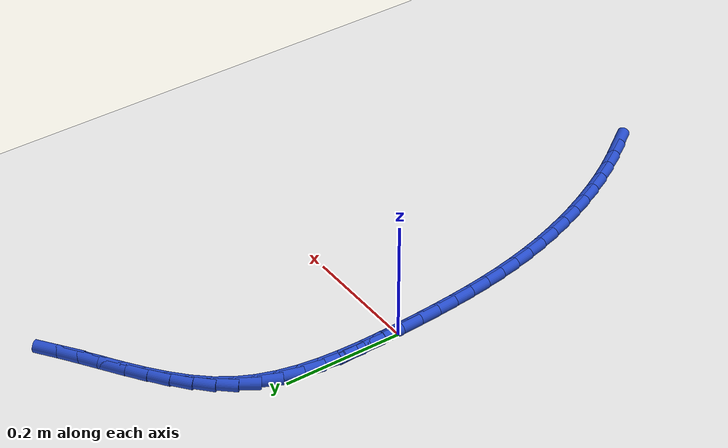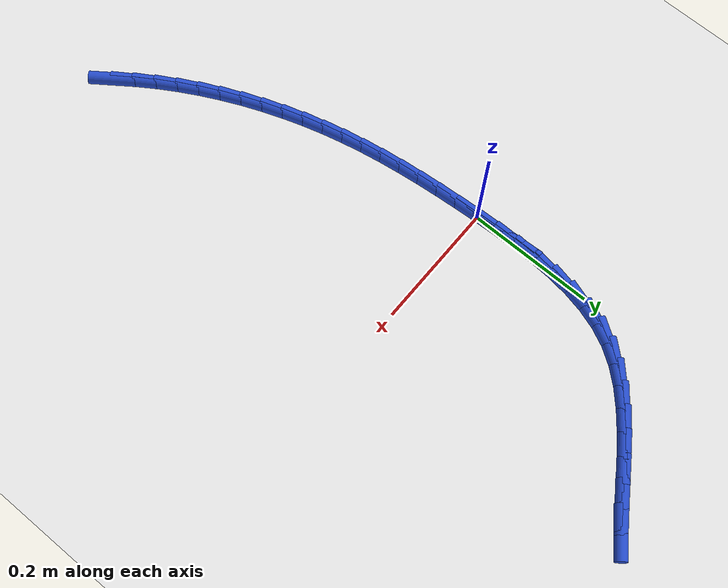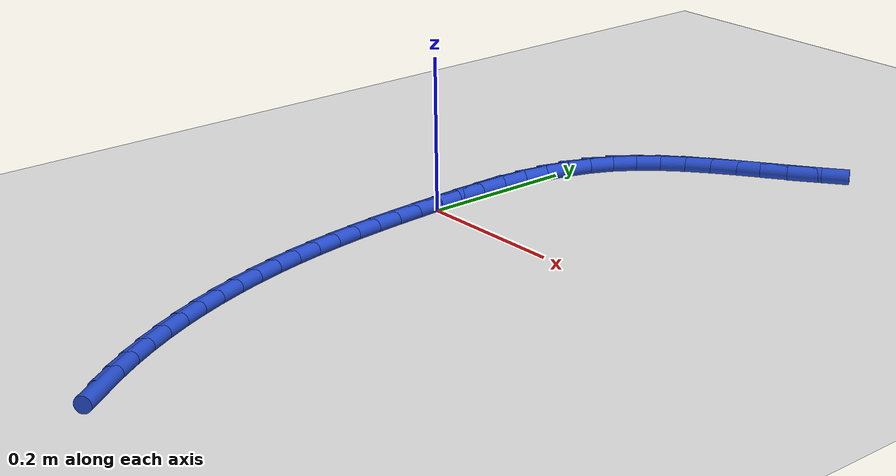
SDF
<sdf version="1.6">
 <world name="default">
  <model name="ground_plane">
   <static>1</static>
   <link name="link">
    <collision name="collision">
     <geometry><plane><normal>0 0 1</normal><size>100 100</size></plane></geometry>
     <surface><friction><ode><mu>100</mu><mu2>50</mu2></ode></friction></surface>
    </collision>
    <visual name="visual">
     <cast_shadows>0</cast_shadows>
     <geometry><plane><normal>0 0 1</normal><size>100 100</size></plane></geometry>
     <material>
      <script><uri>file://media/materials/scripts/gazebo.material</uri><name>Gazebo/WhiteGlow</name></script>
     </material>
    </visual>
   </link>
  </model>
  <model name="line">
   <link name="link_0">
    <pose>-1.8865117801247777e-17 -6.938893903907228e-18 0.01 0 1.57 -1.5235107660359657</pose>
    <collision name="collision">
     <geometry><cylinder><radius>0.01</radius><length>0.08</length></cylinder></geometry>
    </collision>
    <visual name="visual">
     <material>
      <script><name>Gazebo/Blue</name><uri>file://media/materials/scripts/gazebo.material</uri></script>
     </material>
     <geometry><cylinder><radius>0.01</radius><length>0.08</length></cylinder></geometry>
    </visual>
   </link>
   <link name="link_1">
    <pose>-0.0016768079151093715 0.03543487617344846 0.01 0 1.57 -1.5468639049425708</pose>
    <collision name="collision">
     <geometry><cylinder><radius>0.01</radius><length>0.08</length></cylinder></geometry>
    </collision>
    <visual name="visual">
     <material>
      <script><name>Gazebo/Blue</name><uri>file://media/materials/scripts/gazebo.material</uri></script>
     </material>
     <geometry><cylinder><radius>0.01</radius><length>0.08</length></cylinder></geometry>
    </visual>
   </link>
   <link name="link_2">
    <pose>-0.002530282724119755 0.07108993283302313 0.01 0 1.57 1.5583452302952334</pose>
    <collision name="collision">
     <geometry><cylinder><radius>0.01</radius><length>0.08</length></cylinder></geometry>
    </collision>
    <visual name="visual">
     <material>
      <script><name>Gazebo/Blue</name><uri>file://media/materials/scripts/gazebo.material</uri></script>
     </material>
     <geometry><cylinder><radius>0.01</radius><length>0.08</length></cylinder></geometry>
    </visual>
   </link>
   <link name="link_3">
    <pose>-0.002088371365965157 0.10657986108580306 0.01 0 1.57 1.5076467822202162</pose>
    <collision name="collision">
     <geometry><cylinder><radius>0.01</radius><length>0.08</length></cylinder></geometry>
    </collision>
    <visual name="visual">
     <material>
      <script><name>Gazebo/Blue</name><uri>file://media/materials/scripts/gazebo.material</uri></script>
     </material>
     <geometry><cylinder><radius>0.01</radius><length>0.08</length></cylinder></geometry>
    </visual>
   </link>
   <link name="link_4">
    <pose>0.0001209792204204408 0.1415193520388671 0.01 0 1.57 1.4407013593807974</pose>
    <collision name="collision">
     <geometry><cylinder><radius>0.01</radius><length>0.08</length></cylinder></geometry>
    </collision>
    <visual name="visual">
     <material>
      <script><name>Gazebo/Blue</name><uri>file://media/materials/scripts/gazebo.material</uri></script>
     </material>
     <geometry><cylinder><radius>0.01</radius><length>0.08</length></cylinder></geometry>
    </visual>
   </link>
   <link name="link_5">
    <pose>0.004569822096103057 0.1755230967992941 0.01 0 1.57 1.3551159942801971</pose>
    <collision name="collision">
     <geometry><cylinder><radius>0.01</radius><length>0.08</length></cylinder></geometry>
    </collision>
    <visual name="visual">
     <material>
      <script><name>Gazebo/Blue</name><uri>file://media/materials/scripts/gazebo.material</uri></script>
     </material>
     <geometry><cylinder><radius>0.01</radius><length>0.08</length></cylinder></geometry>
    </visual>
   </link>
   <link name="link_6">
    <pose>0.01173021032214871 0.2082057864741631 0.01 0 1.57 1.24850706208488</pose>
    <collision name="collision">
     <geometry><cylinder><radius>0.01</radius><length>0.08</length></cylinder></geometry>
    </collision>
    <visual name="visual">
     <material>
      <script><name>Gazebo/Blue</name><uri>file://media/materials/scripts/gazebo.material</uri></script>
     </material>
     <geometry><cylinder><radius>0.01</radius><length>0.08</length></cylinder></geometry>
    </visual>
   </link>
   <link name="link_7">
    <pose>0.022074196959623413 0.23918211217055307 0.01 0 1.57 1.119484578515157</pose>
    <collision name="collision">
     <geometry><cylinder><radius>0.01</radius><length>0.08</length></cylinder></geometry>
    </collision>
    <visual name="visual">
     <material>
      <script><name>Gazebo/Blue</name><uri>file://media/materials/scripts/gazebo.material</uri></script>
     </material>
     <geometry><cylinder><radius>0.01</radius><length>0.08</length></cylinder></geometry>
    </visual>
   </link>
   <link name="link_8">
    <pose>0.03607383506959317 0.2680667649955427 0.01 0 1.57 0.9750801985812856</pose>
    <collision name="collision">
     <geometry><cylinder><radius>0.01</radius><length>0.08</length></cylinder></geometry>
    </collision>
    <visual name="visual">
     <material>
      <script><name>Gazebo/Blue</name><uri>file://media/materials/scripts/gazebo.material</uri></script>
     </material>
     <geometry><cylinder><radius>0.01</radius><length>0.08</length></cylinder></geometry>
    </visual>
   </link>
   <link name="link_9">
    <pose>0.054047725164523844 0.2945821585456801 0.01 0 1.57 0.8476703503692483</pose>
    <collision name="collision">
     <geometry><cylinder><radius>0.01</radius><length>0.08</length></cylinder></geometry>
    </collision>
    <visual name="visual">
     <material>
      <script><name>Gazebo/Blue</name><uri>file://media/materials/scripts/gazebo.material</uri></script>
     </material>
     <geometry><cylinder><radius>0.01</radius><length>0.08</length></cylinder></geometry>
    </visual>
   </link>
   <link name="link_10">
    <pose>0.07557351755015448 0.3189708476700976 0.01 0 1.57 0.7478165467816401</pose>
    <collision name="collision">
     <geometry><cylinder><radius>0.01</radius><length>0.08</length></cylinder></geometry>
    </collision>
    <visual name="visual">
     <material>
      <script><name>Gazebo/Blue</name><uri>file://media/materials/scripts/gazebo.material</uri></script>
     </material>
     <geometry><cylinder><radius>0.01</radius><length>0.08</length></cylinder></geometry>
    </visual>
   </link>
   <link name="link_11">
    <pose>0.10000551932537141 0.34163217240310434 0.01 0 1.57 0.674269142136977</pose>
    <collision name="collision">
     <geometry><cylinder><radius>0.01</radius><length>0.08</length></cylinder></geometry>
    </collision>
    <visual name="visual">
     <material>
      <script><name>Gazebo/Blue</name><uri>file://media/materials/scripts/gazebo.material</uri></script>
     </material>
     <geometry><cylinder><radius>0.01</radius><length>0.08</length></cylinder></geometry>
    </visual>
   </link>
   <link name="link_12">
    <pose>0.12669799187099895 0.36296550487273166 0.01 0 1.57 0.6245701626853636</pose>
    <collision name="collision">
     <geometry><cylinder><radius>0.01</radius><length>0.08</length></cylinder></geometry>
    </collision>
    <visual name="visual">
     <material>
      <script><name>Gazebo/Blue</name><uri>file://media/materials/scripts/gazebo.material</uri></script>
     </material>
     <geometry><cylinder><radius>0.01</radius><length>0.08</length></cylinder></geometry>
    </visual>
   </link>
   <link name="link_13">
    <pose>0.15500519656786144 0.38337021720701103 0.01 0 1.57 0.5964206562703848</pose>
    <collision name="collision">
     <geometry><cylinder><radius>0.01</radius><length>0.08</length></cylinder></geometry>
    </collision>
    <visual name="visual">
     <material>
      <script><name>Gazebo/Blue</name><uri>file://media/materials/scripts/gazebo.material</uri></script>
     </material>
     <geometry><cylinder><radius>0.01</radius><length>0.08</length></cylinder></geometry>
    </visual>
   </link>
   <link name="link_14">
    <pose>0.18428139479678346 0.4032456815339739 0.01 0 1.57 0.5882977099093772</pose>
    <collision name="collision">
     <geometry><cylinder><radius>0.01</radius><length>0.08</length></cylinder></geometry>
    </collision>
    <visual name="visual">
     <material>
      <script><name>Gazebo/Blue</name><uri>file://media/materials/scripts/gazebo.material</uri></script>
     </material>
     <geometry><cylinder><radius>0.01</radius><length>0.08</length></cylinder></geometry>
    </visual>
   </link>
   <link name="link_15">
    <pose>0.21388084793858925 0.4229912699816514 0.01 0 1.57 0.5996656336511133</pose>
    <collision name="collision">
     <geometry><cylinder><radius>0.01</radius><length>0.08</length></cylinder></geometry>
    </collision>
    <visual name="visual">
     <material>
      <script><name>Gazebo/Blue</name><uri>file://media/materials/scripts/gazebo.material</uri></script>
     </material>
     <geometry><cylinder><radius>0.01</radius><length>0.08</length></cylinder></geometry>
    </visual>
   </link>
   <link name="link_16">
    <pose>0.24315781737410327 0.44300635467807487 0.01 0 1.57 0.6310055048117249</pose>
    <collision name="collision">
     <geometry><cylinder><radius>0.01</radius><length>0.08</length></cylinder></geometry>
    </collision>
    <visual name="visual">
     <material>
      <script><name>Gazebo/Blue</name><uri>file://media/materials/scripts/gazebo.material</uri></script>
     </material>
     <geometry><cylinder><radius>0.01</radius><length>0.08</length></cylinder></geometry>
    </visual>
   </link>
   <link name="link_212">
    <pose>0.18154284457573475 -0.5712118179858698 0.01 0 1.57 -0.9440578989242376</pose>
    <collision name="collision">
     <geometry><cylinder><radius>0.01</radius><length>0.08</length></cylinder></geometry>
    </collision>
    <visual name="visual">
     <material>
      <script><name>Gazebo/Blue</name><uri>file://media/materials/scripts/gazebo.material</uri></script>
     </material>
     <geometry><cylinder><radius>0.01</radius><length>0.08</length></cylinder></geometry>
    </visual>
   </link>
   <link name="link_213">
    <pose>0.16188680686247278 -0.5440675102943555 0.01 0 1.57 -0.9859035523308772</pose>
    <collision name="collision">
     <geometry><cylinder><radius>0.01</radius><length>0.08</length></cylinder></geometry>
    </collision>
    <visual name="visual">
     <material>
      <script><name>Gazebo/Blue</name><uri>file://media/materials/scripts/gazebo.material</uri></script>
     </material>
     <geometry><cylinder><radius>0.01</radius><length>0.08</length></cylinder></geometry>
    </visual>
   </link>
   <link name="link_214">
    <pose>0.1433155122270732 -0.5160219890145514 0.01 0 1.57 -1.0279519584568029</pose>
    <collision name="collision">
     <geometry><cylinder><radius>0.01</radius><length>0.08</length></cylinder></geometry>
    </collision>
    <visual name="visual">
     <material>
      <script><name>Gazebo/Blue</name><uri>file://media/materials/scripts/gazebo.material</uri></script>
     </material>
     <geometry><cylinder><radius>0.01</radius><length>0.08</length></cylinder></geometry>
    </visual>
   </link>
   <link name="link_215">
    <pose>0.12585443611218444 -0.48707950611218764 0.01 0 1.57 -1.068817954261151</pose>
    <collision name="collision">
     <geometry><cylinder><radius>0.01</radius><length>0.08</length></cylinder></geometry>
    </collision>
    <visual name="visual">
     <material>
      <script><name>Gazebo/Blue</name><uri>file://media/materials/scripts/gazebo.material</uri></script>
     </material>
     <geometry><cylinder><radius>0.01</radius><length>0.08</length></cylinder></geometry>
    </visual>
   </link>
   <link name="link_216">
    <pose>0.10952583622856074 -0.4573302423348391 0.01 0 1.57 -1.1084937503842822</pose>
    <collision name="collision">
     <geometry><cylinder><radius>0.01</radius><length>0.08</length></cylinder></geometry>
    </collision>
    <visual name="visual">
     <material>
      <script><name>Gazebo/Blue</name><uri>file://media/materials/scripts/gazebo.material</uri></script>
     </material>
     <geometry><cylinder><radius>0.01</radius><length>0.08</length></cylinder></geometry>
    </visual>
   </link>
   <link name="link_217">
    <pose>0.09435141963721703 -0.4268790834032487 0.01 0 1.57 -1.147223464577513</pose>
    <collision name="collision">
     <geometry><cylinder><radius>0.01</radius><length>0.08</length></cylinder></geometry>
    </collision>
    <visual name="visual">
     <material>
      <script><name>Gazebo/Blue</name><uri>file://media/materials/scripts/gazebo.material</uri></script>
     </material>
     <geometry><cylinder><radius>0.01</radius><length>0.08</length></cylinder></geometry>
    </visual>
   </link>
   <link name="link_218">
    <pose>0.08035289339916878 -0.39583091503815987 0.01 0 1.57 -1.185248839978481</pose>
    <collision name="collision">
     <geometry><cylinder><radius>0.01</radius><length>0.08</length></cylinder></geometry>
    </collision>
    <visual name="visual">
     <material>
      <script><name>Gazebo/Blue</name><uri>file://media/materials/scripts/gazebo.material</uri></script>
     </material>
     <geometry><cylinder><radius>0.01</radius><length>0.08</length></cylinder></geometry>
    </visual>
   </link>
   <link name="link_219">
    <pose>0.06755196457543117 -0.3642906229603154 0.01 0 1.57 -1.222810805842237</pose>
    <collision name="collision">
     <geometry><cylinder><radius>0.01</radius><length>0.08</length></cylinder></geometry>
    </collision>
    <visual name="visual">
     <material>
      <script><name>Gazebo/Blue</name><uri>file://media/materials/scripts/gazebo.material</uri></script>
     </material>
     <geometry><cylinder><radius>0.01</radius><length>0.08</length></cylinder></geometry>
    </visual>
   </link>
   <link name="link_220">
    <pose>0.05597034022702031 -0.33236309289046034 0.01 0 1.57 -1.2601516167888744</pose>
    <collision name="collision">
     <geometry><cylinder><radius>0.01</radius><length>0.08</length></cylinder></geometry>
    </collision>
    <visual name="visual">
     <material>
      <script><name>Gazebo/Blue</name><uri>file://media/materials/scripts/gazebo.material</uri></script>
     </material>
     <geometry><cylinder><radius>0.01</radius><length>0.08</length></cylinder></geometry>
    </visual>
   </link>
   <link name="link_221">
    <pose>0.04562972741495132 -0.30015321054933736 0.01 0 1.57 -1.297517357014985</pose>
    <collision name="collision">
     <geometry><cylinder><radius>0.01</radius><length>0.08</length></cylinder></geometry>
    </collision>
    <visual name="visual">
     <material>
      <script><name>Gazebo/Blue</name><uri>file://media/materials/scripts/gazebo.material</uri></script>
     </material>
     <geometry><cylinder><radius>0.01</radius><length>0.08</length></cylinder></geometry>
    </visual>
   </link>
   <link name="link_222">
    <pose>0.03655182758560636 -0.26776585469777836 0.01 0 1.57 -1.334600627193738</pose>
    <collision name="collision">
     <geometry><cylinder><radius>0.01</radius><length>0.08</length></cylinder></geometry>
    </collision>
    <visual name="visual">
     <material>
      <script><name>Gazebo/Blue</name><uri>file://media/materials/scripts/gazebo.material</uri></script>
     </material>
     <geometry><cylinder><radius>0.01</radius><length>0.08</length></cylinder></geometry>
    </visual>
   </link>
   <link name="link_223">
    <pose>0.028730913415292023 -0.23527190333300244 0.01 0 1.57 -1.3695108703884593</pose>
    <collision name="collision">
     <geometry><cylinder><radius>0.01</radius><length>0.08</length></cylinder></geometry>
    </collision>
    <visual name="visual">
     <material>
      <script><name>Gazebo/Blue</name><uri>file://media/materials/scripts/gazebo.material</uri></script>
     </material>
     <geometry><cylinder><radius>0.01</radius><length>0.08</length></cylinder></geometry>
    </visual>
   </link>
   <link name="link_224">
    <pose>0.022070261515810055 -0.2026294355308674 0.01 0 1.57 -1.401507252321776</pose>
    <collision name="collision">
     <geometry><cylinder><radius>0.01</radius><length>0.08</length></cylinder></geometry>
    </collision>
    <visual name="visual">
     <material>
      <script><name>Gazebo/Blue</name><uri>file://media/materials/scripts/gazebo.material</uri></script>
     </material>
     <geometry><cylinder><radius>0.01</radius><length>0.08</length></cylinder></geometry>
    </visual>
   </link>
   <link name="link_225">
    <pose>0.016454302997760368 -0.16977316944256005 0.01 0 1.57 -1.430283297628939</pose>
    <collision name="collision">
     <geometry><cylinder><radius>0.01</radius><length>0.08</length></cylinder></geometry>
    </collision>
    <visual name="visual">
     <material>
      <script><name>Gazebo/Blue</name><uri>file://media/materials/scripts/gazebo.material</uri></script>
     </material>
     <geometry><cylinder><radius>0.01</radius><length>0.08</length></cylinder></geometry>
    </visual>
   </link>
   <link name="link_226">
    <pose>0.011767468971743068 -0.13663782321926782 0.01 0 1.57 -1.4556180359487596</pose>
    <collision name="collision">
     <geometry><cylinder><radius>0.01</radius><length>0.08</length></cylinder></geometry>
    </collision>
    <visual name="visual">
     <material>
      <script><name>Gazebo/Blue</name><uri>file://media/materials/scripts/gazebo.material</uri></script>
     </material>
     <geometry><cylinder><radius>0.01</radius><length>0.08</length></cylinder></geometry>
    </visual>
   </link>
   <link name="link_227">
    <pose>0.007894190548358273 -0.1031581150121783 0.01 0 1.57 -1.4773732222284321</pose>
    <collision name="collision">
     <geometry><cylinder><radius>0.01</radius><length>0.08</length></cylinder></geometry>
    </collision>
    <visual name="visual">
     <material>
      <script><name>Gazebo/Blue</name><uri>file://media/materials/scripts/gazebo.material</uri></script>
     </material>
     <geometry><cylinder><radius>0.01</radius><length>0.08</length></cylinder></geometry>
    </visual>
   </link>
   <link name="link_228">
    <pose>0.004718898838206015 -0.06926876297247807 0.01 0 1.57 -1.4954864321577388</pose>
    <collision name="collision">
     <geometry><cylinder><radius>0.01</radius><length>0.08</length></cylinder></geometry>
    </collision>
    <visual name="visual">
     <material>
      <script><name>Gazebo/Blue</name><uri>file://media/materials/scripts/gazebo.material</uri></script>
     </material>
     <geometry><cylinder><radius>0.01</radius><length>0.08</length></cylinder></geometry>
    </visual>
   </link>
   <link name="link_229">
    <pose>0.002126024951886574 -0.034904485251356365 0.01 0 1.57 -1.5099616922911039</pose>
    <collision name="collision">
     <geometry><cylinder><radius>0.01</radius><length>0.08</length></cylinder></geometry>
    </collision>
    <visual name="visual">
     <material>
      <script><name>Gazebo/Blue</name><uri>file://media/materials/scripts/gazebo.material</uri></script>
     </material>
     <geometry><cylinder><radius>0.01</radius><length>0.08</length></cylinder></geometry>
    </visual>
   </link>
   <link name="link_230">
    <pose>-3.209238430557093e-17 1.734723475976807e-16 0.01 0 1.57 -1.520859106689337</pose>
    <collision name="collision">
     <geometry><cylinder><radius>0.01</radius><length>0.08</length></cylinder></geometry>
    </collision>
    <visual name="visual">
     <material>
      <script><name>Gazebo/Blue</name><uri>file://media/materials/scripts/gazebo.material</uri></script>
     </material>
     <geometry><cylinder><radius>0.01</radius><length>0.08</length></cylinder></geometry>
    </visual>
   </link>
   <link name="link_231">
    <pose>-0.0017747449068536926 0.03550997463040405 0.01 0 1.57 -1.5282845856909857</pose>
    <collision name="collision">
     <geometry><cylinder><radius>0.01</radius><length>0.08</length></cylinder></geometry>
    </collision>
    <visual name="visual">
     <material>
      <script><name>Gazebo/Blue</name><uri>file://media/materials/scripts/gazebo.material</uri></script>
     </material>
     <geometry><cylinder><radius>0.01</radius><length>0.08</length></cylinder></geometry>
    </visual>
   </link>
   <link name="link_232">
    <pose>-0.003313778658074292 0.07169072048866773 0.01 0 1.57 -1.5246059468580204</pose>
    <collision name="collision">
     <geometry><cylinder><radius>0.01</radius><length>0.08</length></cylinder></geometry>
    </collision>
    <visual name="visual">
     <material>
      <script><name>Gazebo/Blue</name><uri>file://media/materials/scripts/gazebo.material</uri></script>
     </material>
     <geometry><cylinder><radius>0.01</radius><length>0.08</length></cylinder></geometry>
    </visual>
   </link>
  </model>
 </world>
</sdf>
